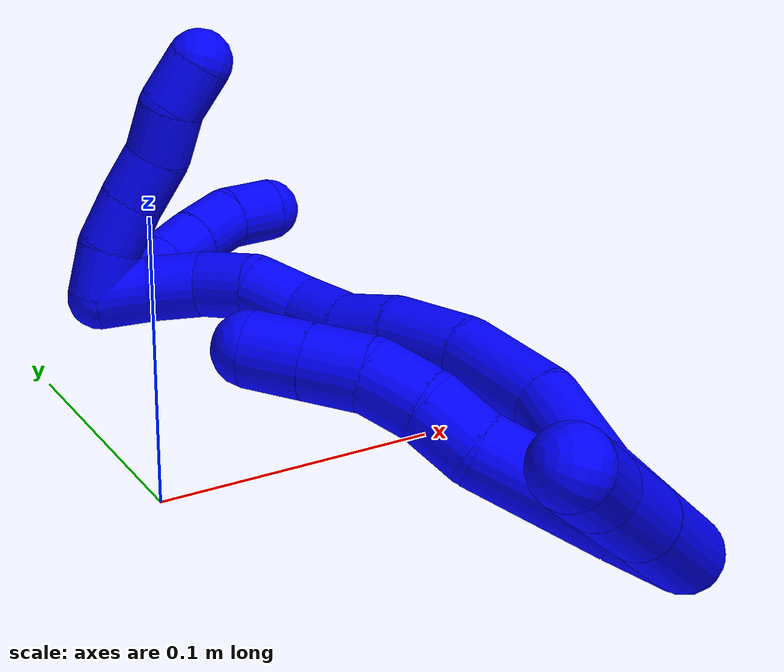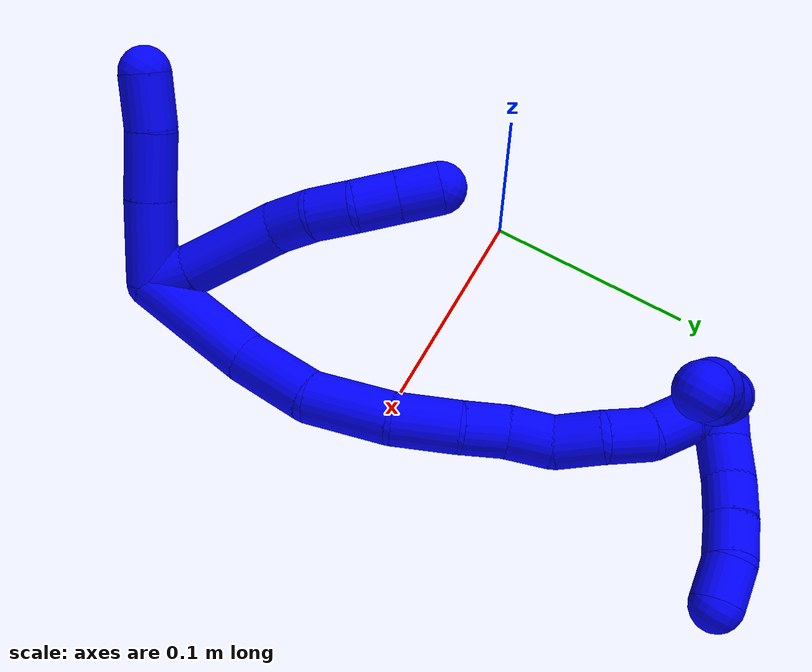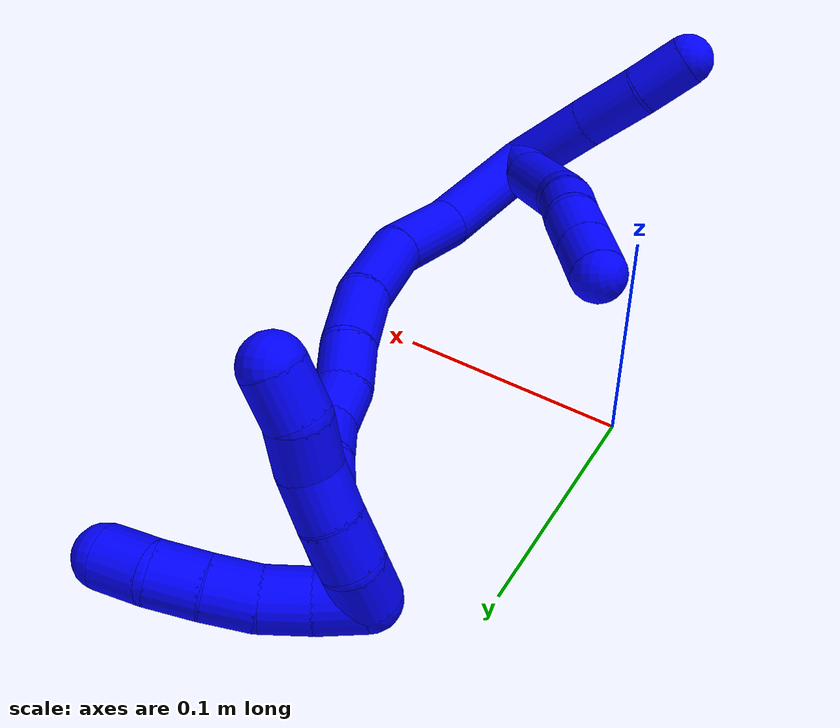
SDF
<sdf version="1.7">
 <world name="default">
  <model name="1">
   <static>0</static>
   <link name="1">
    <collision name="collision-cylinder-e_1_2_8">
     <pose>-0.000331 0.00731 -0.007769 -2.38662 -0.030997 0.078143</pose>
     <geometry><cylinder><radius>0.0125</radius><length>0.021345</length></cylinder></geometry>
     <surface>
      <friction><ode><mu>1.16</mu><mu2>1.16</mu2><slip1>0</slip1><slip2>0</slip2></ode></friction>
      <contact><ode><kp>1e+06</kp><kd>1</kd><max_vel>0</max_vel><min_depth>0.001</min_depth></ode></contact>
     </surface>
    </collision>
    <visual name="visual-cylinder-e_1_2_8">
     <pose>-0.000331 0.00731 -0.007769 -2.38662 -0.030997 0.078143</pose>
     <geometry><cylinder><radius>0.0125</radius><length>0.021345</length></cylinder></geometry>
     <material><ambient>0 0 1 1</ambient></material>
    </visual>
    <collision name="collision-cylinder-e_2_8_9">
     <pose>-0.00284 0.028673 -0.034826 -2.51193 -0.091033 0.277923</pose>
     <geometry><cylinder><radius>0.0125</radius><length>0.047927</length></cylinder></geometry>
     <surface>
      <friction><ode><mu>1.16</mu><mu2>1.16</mu2><slip1>0</slip1><slip2>0</slip2></ode></friction>
      <contact><ode><kp>1e+06</kp><kd>1</kd><max_vel>0</max_vel><min_depth>0.001</min_depth></ode></contact>
     </surface>
    </collision>
    <visual name="visual-cylinder-e_2_8_9">
     <pose>-0.00284 0.028673 -0.034826 -2.51193 -0.091033 0.277923</pose>
     <geometry><cylinder><radius>0.0125</radius><length>0.047927</length></cylinder></geometry>
     <material><ambient>0 0 1 1</ambient></material>
    </visual>
    <collision name="collision-cylinder-e_3_9_10">
     <pose>-0.007841 0.049629 -0.060778 -2.33867 -0.286126 0.654253</pose>
     <geometry><cylinder><radius>0.0125</radius><length>0.020004</length></cylinder></geometry>
     <surface>
      <friction><ode><mu>1.16</mu><mu2>1.16</mu2><slip1>0</slip1><slip2>0</slip2></ode></friction>
      <contact><ode><kp>1e+06</kp><kd>1</kd><max_vel>0</max_vel><min_depth>0.001</min_depth></ode></contact>
     </surface>
    </collision>
    <visual name="visual-cylinder-e_3_9_10">
     <pose>-0.007841 0.049629 -0.060778 -2.33867 -0.286126 0.654253</pose>
     <geometry><cylinder><radius>0.0125</radius><length>0.020004</length></cylinder></geometry>
     <material><ambient>0 0 1 1</ambient></material>
    </visual>
    <collision name="collision-cylinder-e_4_10_11">
     <pose>-0.011324 0.064355 -0.073934 -2.26333 -0.064839 0.137865</pose>
     <geometry><cylinder><radius>0.0125</radius><length>0.020374</length></cylinder></geometry>
     <surface>
      <friction><ode><mu>1.16</mu><mu2>1.16</mu2><slip1>0</slip1><slip2>0</slip2></ode></friction>
      <contact><ode><kp>1e+06</kp><kd>1</kd><max_vel>0</max_vel><min_depth>0.001</min_depth></ode></contact>
     </surface>
    </collision>
    <visual name="visual-cylinder-e_4_10_11">
     <pose>-0.011324 0.064355 -0.073934 -2.26333 -0.064839 0.137865</pose>
     <geometry><cylinder><radius>0.0125</radius><length>0.020374</length></cylinder></geometry>
     <material><ambient>0 0 1 1</ambient></material>
    </visual>
    <collision name="collision-cylinder-e_5_11_12">
     <pose>-0.009844 0.079415 -0.087186 -2.32231 0.212861 -0.482506</pose>
     <geometry><cylinder><radius>0.0125</radius><length>0.020266</length></cylinder></geometry>
     <surface>
      <friction><ode><mu>1.16</mu><mu2>1.16</mu2><slip1>0</slip1><slip2>0</slip2></ode></friction>
      <contact><ode><kp>1e+06</kp><kd>1</kd><max_vel>0</max_vel><min_depth>0.001</min_depth></ode></contact>
     </surface>
    </collision>
    <visual name="visual-cylinder-e_5_11_12">
     <pose>-0.009844 0.079415 -0.087186 -2.32231 0.212861 -0.482506</pose>
     <geometry><cylinder><radius>0.0125</radius><length>0.020266</length></cylinder></geometry>
     <material><ambient>0 0 1 1</ambient></material>
    </visual>
    <collision name="collision-cylinder-e_6_12_6">
     <pose>-0.005599 0.093845 -0.100633 -2.31955 0.21106 -0.476816</pose>
     <geometry><cylinder><radius>0.0125</radius><length>0.020085</length></cylinder></geometry>
     <surface>
      <friction><ode><mu>1.16</mu><mu2>1.16</mu2><slip1>0</slip1><slip2>0</slip2></ode></friction>
      <contact><ode><kp>1e+06</kp><kd>1</kd><max_vel>0</max_vel><min_depth>0.001</min_depth></ode></contact>
     </surface>
    </collision>
    <visual name="visual-cylinder-e_6_12_6">
     <pose>-0.005599 0.093845 -0.100633 -2.31955 0.21106 -0.476816</pose>
     <geometry><cylinder><radius>0.0125</radius><length>0.020085</length></cylinder></geometry>
     <material><ambient>0 0 1 1</ambient></material>
    </visual>
    <collision name="collision-cylinder-e_1_2_13">
     <pose>-0.005926 -0.008426 -0.017744 2.69827 -0.293018 -1.15946</pose>
     <geometry><cylinder><radius>0.0125</radius><length>0.041034</length></cylinder></geometry>
     <surface>
      <friction><ode><mu>1.16</mu><mu2>1.16</mu2><slip1>0</slip1><slip2>0</slip2></ode></friction>
      <contact><ode><kp>1e+06</kp><kd>1</kd><max_vel>0</max_vel><min_depth>0.001</min_depth></ode></contact>
     </surface>
    </collision>
    <visual name="visual-cylinder-e_1_2_13">
     <pose>-0.005926 -0.008426 -0.017744 2.69827 -0.293018 -1.15946</pose>
     <geometry><cylinder><radius>0.0125</radius><length>0.041034</length></cylinder></geometry>
     <material><ambient>0 0 1 1</ambient></material>
    </visual>
    <collision name="collision-cylinder-e_2_13_14">
     <pose>-0.016451 -0.022796 -0.049818 2.74835 -0.288169 -1.25904</pose>
     <geometry><cylinder><radius>0.0125</radius><length>0.032364</length></cylinder></geometry>
     <surface>
      <friction><ode><mu>1.16</mu><mu2>1.16</mu2><slip1>0</slip1><slip2>0</slip2></ode></friction>
      <contact><ode><kp>1e+06</kp><kd>1</kd><max_vel>0</max_vel><min_depth>0.001</min_depth></ode></contact>
     </surface>
    </collision>
    <visual name="visual-cylinder-e_2_13_14">
     <pose>-0.016451 -0.022796 -0.049818 2.74835 -0.288169 -1.25904</pose>
     <geometry><cylinder><radius>0.0125</radius><length>0.032364</length></cylinder></geometry>
     <material><ambient>0 0 1 1</ambient></material>
    </visual>
    <collision name="collision-cylinder-e_3_14_5">
     <pose>-0.024714 -0.035373 -0.075081 2.59636 -0.27903 -0.930942</pose>
     <geometry><cylinder><radius>0.0125</radius><length>0.026602</length></cylinder></geometry>
     <surface>
      <friction><ode><mu>1.16</mu><mu2>1.16</mu2><slip1>0</slip1><slip2>0</slip2></ode></friction>
      <contact><ode><kp>1e+06</kp><kd>1</kd><max_vel>0</max_vel><min_depth>0.001</min_depth></ode></contact>
     </surface>
    </collision>
    <visual name="visual-cylinder-e_3_14_5">
     <pose>-0.024714 -0.035373 -0.075081 2.59636 -0.27903 -0.930942</pose>
     <geometry><cylinder><radius>0.0125</radius><length>0.026602</length></cylinder></geometry>
     <material><ambient>0 0 1 1</ambient></material>
    </visual>
    <collision name="collision-cylinder-e_1_2_15">
     <pose>-0.001015 0.029984 0.003526 -1.45375 -0.033592 0.029875</pose>
     <geometry><cylinder><radius>0.0125</radius><length>0.060416</length></cylinder></geometry>
     <surface>
      <friction><ode><mu>1.16</mu><mu2>1.16</mu2><slip1>0</slip1><slip2>0</slip2></ode></friction>
      <contact><ode><kp>1e+06</kp><kd>1</kd><max_vel>0</max_vel><min_depth>0.001</min_depth></ode></contact>
     </surface>
    </collision>
    <visual name="visual-cylinder-e_1_2_15">
     <pose>-0.001015 0.029984 0.003526 -1.45375 -0.033592 0.029875</pose>
     <geometry><cylinder><radius>0.0125</radius><length>0.060416</length></cylinder></geometry>
     <material><ambient>0 0 1 1</ambient></material>
    </visual>
    <collision name="collision-cylinder-e_2_15_16">
     <pose>-0.007135 0.079113 0.006318 -1.60905 -0.260467 0.270507</pose>
     <geometry><cylinder><radius>0.0125</radius><length>0.039653</length></cylinder></geometry>
     <surface>
      <friction><ode><mu>1.16</mu><mu2>1.16</mu2><slip1>0</slip1><slip2>0</slip2></ode></friction>
      <contact><ode><kp>1e+06</kp><kd>1</kd><max_vel>0</max_vel><min_depth>0.001</min_depth></ode></contact>
     </surface>
    </collision>
    <visual name="visual-cylinder-e_2_15_16">
     <pose>-0.007135 0.079113 0.006318 -1.60905 -0.260467 0.270507</pose>
     <geometry><cylinder><radius>0.0125</radius><length>0.039653</length></cylinder></geometry>
     <material><ambient>0 0 1 1</ambient></material>
    </visual>
    <collision name="collision-cylinder-e_3_16_17">
     <pose>-0.013035 0.117423 -4.7e-05 -1.85662 -0.039704 0.053045</pose>
     <geometry><cylinder><radius>0.0125</radius><length>0.039986</length></cylinder></geometry>
     <surface>
      <friction><ode><mu>1.16</mu><mu2>1.16</mu2><slip1>0</slip1><slip2>0</slip2></ode></friction>
      <contact><ode><kp>1e+06</kp><kd>1</kd><max_vel>0</max_vel><min_depth>0.001</min_depth></ode></contact>
     </surface>
    </collision>
    <visual name="visual-cylinder-e_3_16_17">
     <pose>-0.013035 0.117423 -4.7e-05 -1.85662 -0.039704 0.053045</pose>
     <geometry><cylinder><radius>0.0125</radius><length>0.039986</length></cylinder></geometry>
     <material><ambient>0 0 1 1</ambient></material>
    </visual>
    <collision name="collision-cylinder-e_4_17_18">
     <pose>-0.011222 0.150696 -0.011629 -1.96993 0.168628 -0.253375</pose>
     <geometry><cylinder><radius>0.0125</radius><length>0.031061</length></cylinder></geometry>
     <surface>
      <friction><ode><mu>1.16</mu><mu2>1.16</mu2><slip1>0</slip1><slip2>0</slip2></ode></friction>
      <contact><ode><kp>1e+06</kp><kd>1</kd><max_vel>0</max_vel><min_depth>0.001</min_depth></ode></contact>
     </surface>
    </collision>
    <visual name="visual-cylinder-e_4_17_18">
     <pose>-0.011222 0.150696 -0.011629 -1.96993 0.168628 -0.253375</pose>
     <geometry><cylinder><radius>0.0125</radius><length>0.031061</length></cylinder></geometry>
     <material><ambient>0 0 1 1</ambient></material>
    </visual>
    <collision name="collision-cylinder-e_5_18_19">
     <pose>-0.004643 0.174106 -0.021777 -1.99469 0.371185 -0.565821</pose>
     <geometry><cylinder><radius>0.0125</radius><length>0.021906</length></cylinder></geometry>
     <surface>
      <friction><ode><mu>1.16</mu><mu2>1.16</mu2><slip1>0</slip1><slip2>0</slip2></ode></friction>
      <contact><ode><kp>1e+06</kp><kd>1</kd><max_vel>0</max_vel><min_depth>0.001</min_depth></ode></contact>
     </surface>
    </collision>
    <visual name="visual-cylinder-e_5_18_19">
     <pose>-0.004643 0.174106 -0.021777 -1.99469 0.371185 -0.565821</pose>
     <geometry><cylinder><radius>0.0125</radius><length>0.021906</length></cylinder></geometry>
     <material><ambient>0 0 1 1</ambient></material>
    </visual>
    <collision name="collision-cylinder-e_6_19_20">
     <pose>0.000422 0.193823 -0.029308 -1.88055 0.099503 -0.136223</pose>
     <geometry><cylinder><radius>0.0125</radius><length>0.021976</length></cylinder></geometry>
     <surface>
      <friction><ode><mu>1.16</mu><mu2>1.16</mu2><slip1>0</slip1><slip2>0</slip2></ode></friction>
      <contact><ode><kp>1e+06</kp><kd>1</kd><max_vel>0</max_vel><min_depth>0.001</min_depth></ode></contact>
     </surface>
    </collision>
    <visual name="visual-cylinder-e_6_19_20">
     <pose>0.000422 0.193823 -0.029308 -1.88055 0.099503 -0.136223</pose>
     <geometry><cylinder><radius>0.0125</radius><length>0.021976</length></cylinder></geometry>
     <material><ambient>0 0 1 1</ambient></material>
    </visual>
    <collision name="collision-cylinder-e_7_20_21">
     <pose>0.001668 0.213299 -0.039436 -2.21418 0.013654 -0.027303</pose>
     <geometry><cylinder><radius>0.0125</radius><length>0.022656</length></cylinder></geometry>
     <surface>
      <friction><ode><mu>1.16</mu><mu2>1.16</mu2><slip1>0</slip1><slip2>0</slip2></ode></friction>
      <contact><ode><kp>1e+06</kp><kd>1</kd><max_vel>0</max_vel><min_depth>0.001</min_depth></ode></contact>
     </surface>
    </collision>
    <visual name="visual-cylinder-e_7_20_21">
     <pose>0.001668 0.213299 -0.039436 -2.21418 0.013654 -0.027303</pose>
     <geometry><cylinder><radius>0.0125</radius><length>0.022656</length></cylinder></geometry>
     <material><ambient>0 0 1 1</ambient></material>
    </visual>
    <collision name="collision-cylinder-e_8_21_22">
     <pose>0.005611 0.23091 -0.051863 -2.15331 0.354415 -0.641874</pose>
     <geometry><cylinder><radius>0.0125</radius><length>0.021832</length></cylinder></geometry>
     <surface>
      <friction><ode><mu>1.16</mu><mu2>1.16</mu2><slip1>0</slip1><slip2>0</slip2></ode></friction>
      <contact><ode><kp>1e+06</kp><kd>1</kd><max_vel>0</max_vel><min_depth>0.001</min_depth></ode></contact>
     </surface>
    </collision>
    <visual name="visual-cylinder-e_8_21_22">
     <pose>0.005611 0.23091 -0.051863 -2.15331 0.354415 -0.641874</pose>
     <geometry><cylinder><radius>0.0125</radius><length>0.021832</length></cylinder></geometry>
     <material><ambient>0 0 1 1</ambient></material>
    </visual>
    <collision name="collision-cylinder-e_9_22_23">
     <pose>0.014005 0.244727 -0.064663 -2.50787 0.477756 -1.27758</pose>
     <geometry><cylinder><radius>0.0125</radius><length>0.020035</length></cylinder></geometry>
     <surface>
      <friction><ode><mu>1.16</mu><mu2>1.16</mu2><slip1>0</slip1><slip2>0</slip2></ode></friction>
      <contact><ode><kp>1e+06</kp><kd>1</kd><max_vel>0</max_vel><min_depth>0.001</min_depth></ode></contact>
     </surface>
    </collision>
    <visual name="visual-cylinder-e_9_22_23">
     <pose>0.014005 0.244727 -0.064663 -2.50787 0.477756 -1.27758</pose>
     <geometry><cylinder><radius>0.0125</radius><length>0.020035</length></cylinder></geometry>
     <material><ambient>0 0 1 1</ambient></material>
    </visual>
    <collision name="collision-cylinder-e_10_23_1">
     <pose>0.023784 0.254466 -0.079454 -2.61111 0.529618 -1.56908</pose>
     <geometry><cylinder><radius>0.0125</radius><length>0.02048</length></cylinder></geometry>
     <surface>
      <friction><ode><mu>1.16</mu><mu2>1.16</mu2><slip1>0</slip1><slip2>0</slip2></ode></friction>
      <contact><ode><kp>1e+06</kp><kd>1</kd><max_vel>0</max_vel><min_depth>0.001</min_depth></ode></contact>
     </surface>
    </collision>
    <visual name="visual-cylinder-e_10_23_1">
     <pose>0.023784 0.254466 -0.079454 -2.61111 0.529618 -1.56908</pose>
     <geometry><cylinder><radius>0.0125</radius><length>0.02048</length></cylinder></geometry>
     <material><ambient>0 0 1 1</ambient></material>
    </visual>
    <collision name="collision-cylinder-e_1_1_24">
     <pose>0.026311 0.264239 -0.079022 -0.58212 -0.267824 0.080671</pose>
     <geometry><cylinder><radius>0.0125</radius><length>0.02</length></cylinder></geometry>
     <surface>
      <friction><ode><mu>1.16</mu><mu2>1.16</mu2><slip1>0</slip1><slip2>0</slip2></ode></friction>
      <contact><ode><kp>1e+06</kp><kd>1</kd><max_vel>0</max_vel><min_depth>0.001</min_depth></ode></contact>
     </surface>
    </collision>
    <visual name="visual-cylinder-e_1_1_24">
     <pose>0.026311 0.264239 -0.079022 -0.58212 -0.267824 0.080671</pose>
     <geometry><cylinder><radius>0.0125</radius><length>0.02</length></cylinder></geometry>
     <material><ambient>0 0 1 1</ambient></material>
    </visual>
    <collision name="collision-cylinder-e_2_24_25">
     <pose>0.019352 0.275064 -0.063833 -0.658779 -0.445975 0.154722</pose>
     <geometry><cylinder><radius>0.0125</radius><length>0.02</length></cylinder></geometry>
     <surface>
      <friction><ode><mu>1.16</mu><mu2>1.16</mu2><slip1>0</slip1><slip2>0</slip2></ode></friction>
      <contact><ode><kp>1e+06</kp><kd>1</kd><max_vel>0</max_vel><min_depth>0.001</min_depth></ode></contact>
     </surface>
    </collision>
    <visual name="visual-cylinder-e_2_24_25">
     <pose>0.019352 0.275064 -0.063833 -0.658779 -0.445975 0.154722</pose>
     <geometry><cylinder><radius>0.0125</radius><length>0.02</length></cylinder></geometry>
     <material><ambient>0 0 1 1</ambient></material>
    </visual>
    <collision name="collision-cylinder-e_3_25_26">
     <pose>0.009299 0.284976 -0.049786 -0.565648 -0.611351 0.182904</pose>
     <geometry><cylinder><radius>0.0125</radius><length>0.02</length></cylinder></geometry>
     <surface>
      <friction><ode><mu>1.16</mu><mu2>1.16</mu2><slip1>0</slip1><slip2>0</slip2></ode></friction>
      <contact><ode><kp>1e+06</kp><kd>1</kd><max_vel>0</max_vel><min_depth>0.001</min_depth></ode></contact>
     </surface>
    </collision>
    <visual name="visual-cylinder-e_3_25_26">
     <pose>0.009299 0.284976 -0.049786 -0.565648 -0.611351 0.182904</pose>
     <geometry><cylinder><radius>0.0125</radius><length>0.02</length></cylinder></geometry>
     <material><ambient>0 0 1 1</ambient></material>
    </visual>
    <collision name="collision-cylinder-e_4_26_27">
     <pose>-0.001994 0.293117 -0.035451 -0.468175 -0.588689 0.144327</pose>
     <geometry><cylinder><radius>0.0125</radius><length>0.02</length></cylinder></geometry>
     <surface>
      <friction><ode><mu>1.16</mu><mu2>1.16</mu2><slip1>0</slip1><slip2>0</slip2></ode></friction>
      <contact><ode><kp>1e+06</kp><kd>1</kd><max_vel>0</max_vel><min_depth>0.001</min_depth></ode></contact>
     </surface>
    </collision>
    <visual name="visual-cylinder-e_4_26_27">
     <pose>-0.001994 0.293117 -0.035451 -0.468175 -0.588689 0.144327</pose>
     <geometry><cylinder><radius>0.0125</radius><length>0.02</length></cylinder></geometry>
     <material><ambient>0 0 1 1</ambient></material>
    </visual>
    <collision name="collision-cylinder-e_5_27_4">
     <pose>-0.011296 0.298746 -0.01895 -0.203685 -0.384295 0.039759</pose>
     <geometry><cylinder><radius>0.0125</radius><length>0.02</length></cylinder></geometry>
     <surface>
      <friction><ode><mu>1.16</mu><mu2>1.16</mu2><slip1>0</slip1><slip2>0</slip2></ode></friction>
      <contact><ode><kp>1e+06</kp><kd>1</kd><max_vel>0</max_vel><min_depth>0.001</min_depth></ode></contact>
     </surface>
    </collision>
    <visual name="visual-cylinder-e_5_27_4">
     <pose>-0.011296 0.298746 -0.01895 -0.203685 -0.384295 0.039759</pose>
     <geometry><cylinder><radius>0.0125</radius><length>0.02</length></cylinder></geometry>
     <material><ambient>0 0 1 1</ambient></material>
    </visual>
    <collision name="collision-cylinder-e_1_1_28">
     <pose>0.019086 0.259426 -0.088597 -2.83034 -1.41047 2.77707</pose>
     <geometry><cylinder><radius>0.0125</radius><length>0.02</length></cylinder></geometry>
     <surface>
      <friction><ode><mu>1.16</mu><mu2>1.16</mu2><slip1>0</slip1><slip2>0</slip2></ode></friction>
      <contact><ode><kp>1e+06</kp><kd>1</kd><max_vel>0</max_vel><min_depth>0.001</min_depth></ode></contact>
     </surface>
    </collision>
    <visual name="visual-cylinder-e_1_1_28">
     <pose>0.019086 0.259426 -0.088597 -2.83034 -1.41047 2.77707</pose>
     <geometry><cylinder><radius>0.0125</radius><length>0.02</length></cylinder></geometry>
     <material><ambient>0 0 1 1</ambient></material>
    </visual>
    <collision name="collision-cylinder-e_2_28_29">
     <pose>-0.00073 0.258993 -0.089604 1.06339 -1.46508 -0.973284</pose>
     <geometry><cylinder><radius>0.0125</radius><length>0.02</length></cylinder></geometry>
     <surface>
      <friction><ode><mu>1.16</mu><mu2>1.16</mu2><slip1>0</slip1><slip2>0</slip2></ode></friction>
      <contact><ode><kp>1e+06</kp><kd>1</kd><max_vel>0</max_vel><min_depth>0.001</min_depth></ode></contact>
     </surface>
    </collision>
    <visual name="visual-cylinder-e_2_28_29">
     <pose>-0.00073 0.258993 -0.089604 1.06339 -1.46508 -0.973284</pose>
     <geometry><cylinder><radius>0.0125</radius><length>0.02</length></cylinder></geometry>
     <material><ambient>0 0 1 1</ambient></material>
    </visual>
    <collision name="collision-cylinder-e_3_29_30">
     <pose>-0.020475 0.256284 -0.088223 1.11845 -1.37081 -0.945987</pose>
     <geometry><cylinder><radius>0.0125</radius><length>0.02</length></cylinder></geometry>
     <surface>
      <friction><ode><mu>1.16</mu><mu2>1.16</mu2><slip1>0</slip1><slip2>0</slip2></ode></friction>
      <contact><ode><kp>1e+06</kp><kd>1</kd><max_vel>0</max_vel><min_depth>0.001</min_depth></ode></contact>
     </surface>
    </collision>
    <visual name="visual-cylinder-e_3_29_30">
     <pose>-0.020475 0.256284 -0.088223 1.11845 -1.37081 -0.945987</pose>
     <geometry><cylinder><radius>0.0125</radius><length>0.02</length></cylinder></geometry>
     <material><ambient>0 0 1 1</ambient></material>
    </visual>
    <collision name="collision-cylinder-e_4_30_31">
     <pose>-0.04001 0.252893 -0.088986 2.36462 -1.33995 -2.18785</pose>
     <geometry><cylinder><radius>0.0125</radius><length>0.02</length></cylinder></geometry>
     <surface>
      <friction><ode><mu>1.16</mu><mu2>1.16</mu2><slip1>0</slip1><slip2>0</slip2></ode></friction>
      <contact><ode><kp>1e+06</kp><kd>1</kd><max_vel>0</max_vel><min_depth>0.001</min_depth></ode></contact>
     </surface>
    </collision>
    <visual name="visual-cylinder-e_4_30_31">
     <pose>-0.04001 0.252893 -0.088986 2.36462 -1.33995 -2.18785</pose>
     <geometry><cylinder><radius>0.0125</radius><length>0.02</length></cylinder></geometry>
     <material><ambient>0 0 1 1</ambient></material>
    </visual>
    <collision name="collision-cylinder-e_5_31_3">
     <pose>-0.059526 0.249816 -0.089148 0.786521 -1.36119 -0.648114</pose>
     <geometry><cylinder><radius>0.0125</radius><length>0.02</length></cylinder></geometry>
     <surface>
      <friction><ode><mu>1.16</mu><mu2>1.16</mu2><slip1>0</slip1><slip2>0</slip2></ode></friction>
      <contact><ode><kp>1e+06</kp><kd>1</kd><max_vel>0</max_vel><min_depth>0.001</min_depth></ode></contact>
     </surface>
    </collision>
    <visual name="visual-cylinder-e_5_31_3">
     <pose>-0.059526 0.249816 -0.089148 0.786521 -1.36119 -0.648114</pose>
     <geometry><cylinder><radius>0.0125</radius><length>0.02</length></cylinder></geometry>
     <material><ambient>0 0 1 1</ambient></material>
    </visual>
    <collision name="collision-sphere-3">
     <pose>-0.069307 0.248343 -0.087678 0 -0 0</pose>
     <geometry><sphere><radius>0.0125</radius></sphere></geometry>
     <surface>
      <friction><ode><mu>1.16</mu><mu2>1.16</mu2><slip1>0</slip1><slip2>0</slip2></ode></friction>
      <contact><ode><kp>1e+06</kp><kd>1</kd><max_vel>0</max_vel><min_depth>0.001</min_depth></ode></contact>
     </surface>
    </collision>
    <visual name="visual-sphere-3">
     <pose>-0.069307 0.248343 -0.087678 0 -0 0</pose>
     <geometry><sphere><radius>0.0125</radius></sphere></geometry>
     <material><ambient>0 0 1 1</ambient></material>
    </visual>
    <collision name="collision-sphere-31">
     <pose>-0.049745 0.251289 -0.090617 0 -0 0</pose>
     <geometry><sphere><radius>0.0125</radius></sphere></geometry>
     <surface>
      <friction><ode><mu>1.16</mu><mu2>1.16</mu2><slip1>0</slip1><slip2>0</slip2></ode></friction>
      <contact><ode><kp>1e+06</kp><kd>1</kd><max_vel>0</max_vel><min_depth>0.001</min_depth></ode></contact>
     </surface>
    </collision>
    <visual name="visual-sphere-31">
     <pose>-0.049745 0.251289 -0.090617 0 -0 0</pose>
     <geometry><sphere><radius>0.0125</radius></sphere></geometry>
     <material><ambient>0 0 1 1</ambient></material>
    </visual>
    <collision name="collision-sphere-30">
     <pose>-0.030275 0.254497 -0.087354 0 -0 0</pose>
     <geometry><sphere><radius>0.0125</radius></sphere></geometry>
     <surface>
      <friction><ode><mu>1.16</mu><mu2>1.16</mu2><slip1>0</slip1><slip2>0</slip2></ode></friction>
      <contact><ode><kp>1e+06</kp><kd>1</kd><max_vel>0</max_vel><min_depth>0.001</min_depth></ode></contact>
     </surface>
    </collision>
    <visual name="visual-sphere-30">
     <pose>-0.030275 0.254497 -0.087354 0 -0 0</pose>
     <geometry><sphere><radius>0.0125</radius></sphere></geometry>
     <material><ambient>0 0 1 1</ambient></material>
    </visual>
    <collision name="collision-sphere-29">
     <pose>-0.010674 0.258071 -0.089091 0 -0 0</pose>
     <geometry><sphere><radius>0.0125</radius></sphere></geometry>
     <surface>
      <friction><ode><mu>1.16</mu><mu2>1.16</mu2><slip1>0</slip1><slip2>0</slip2></ode></friction>
      <contact><ode><kp>1e+06</kp><kd>1</kd><max_vel>0</max_vel><min_depth>0.001</min_depth></ode></contact>
     </surface>
    </collision>
    <visual name="visual-sphere-29">
     <pose>-0.010674 0.258071 -0.089091 0 -0 0</pose>
     <geometry><sphere><radius>0.0125</radius></sphere></geometry>
     <material><ambient>0 0 1 1</ambient></material>
    </visual>
    <collision name="collision-sphere-28">
     <pose>0.009214 0.259915 -0.090116 0 -0 0</pose>
     <geometry><sphere><radius>0.0125</radius></sphere></geometry>
     <surface>
      <friction><ode><mu>1.16</mu><mu2>1.16</mu2><slip1>0</slip1><slip2>0</slip2></ode></friction>
      <contact><ode><kp>1e+06</kp><kd>1</kd><max_vel>0</max_vel><min_depth>0.001</min_depth></ode></contact>
     </surface>
    </collision>
    <visual name="visual-sphere-28">
     <pose>0.009214 0.259915 -0.090116 0 -0 0</pose>
     <geometry><sphere><radius>0.0125</radius></sphere></geometry>
     <material><ambient>0 0 1 1</ambient></material>
    </visual>
    <collision name="collision-sphere-4">
     <pose>-0.015045 0.300621 -0.009871 0 -0 0</pose>
     <geometry><sphere><radius>0.0125</radius></sphere></geometry>
     <surface>
      <friction><ode><mu>1.16</mu><mu2>1.16</mu2><slip1>0</slip1><slip2>0</slip2></ode></friction>
      <contact><ode><kp>1e+06</kp><kd>1</kd><max_vel>0</max_vel><min_depth>0.001</min_depth></ode></contact>
     </surface>
    </collision>
    <visual name="visual-sphere-4">
     <pose>-0.015045 0.300621 -0.009871 0 -0 0</pose>
     <geometry><sphere><radius>0.0125</radius></sphere></geometry>
     <material><ambient>0 0 1 1</ambient></material>
    </visual>
    <collision name="collision-sphere-27">
     <pose>-0.007547 0.29687 -0.028029 0 -0 0</pose>
     <geometry><sphere><radius>0.0125</radius></sphere></geometry>
     <surface>
      <friction><ode><mu>1.16</mu><mu2>1.16</mu2><slip1>0</slip1><slip2>0</slip2></ode></friction>
      <contact><ode><kp>1e+06</kp><kd>1</kd><max_vel>0</max_vel><min_depth>0.001</min_depth></ode></contact>
     </surface>
    </collision>
    <visual name="visual-sphere-27">
     <pose>-0.007547 0.29687 -0.028029 0 -0 0</pose>
     <geometry><sphere><radius>0.0125</radius></sphere></geometry>
     <material><ambient>0 0 1 1</ambient></material>
    </visual>
    <collision name="collision-sphere-26">
     <pose>0.003559 0.289365 -0.042872 0 -0 0</pose>
     <geometry><sphere><radius>0.0125</radius></sphere></geometry>
     <surface>
      <friction><ode><mu>1.16</mu><mu2>1.16</mu2><slip1>0</slip1><slip2>0</slip2></ode></friction>
      <contact><ode><kp>1e+06</kp><kd>1</kd><max_vel>0</max_vel><min_depth>0.001</min_depth></ode></contact>
     </surface>
    </collision>
    <visual name="visual-sphere-26">
     <pose>0.003559 0.289365 -0.042872 0 -0 0</pose>
     <geometry><sphere><radius>0.0125</radius></sphere></geometry>
     <material><ambient>0 0 1 1</ambient></material>
    </visual>
    <collision name="collision-sphere-25">
     <pose>0.015038 0.280587 -0.056699 0 -0 0</pose>
     <geometry><sphere><radius>0.0125</radius></sphere></geometry>
     <surface>
      <friction><ode><mu>1.16</mu><mu2>1.16</mu2><slip1>0</slip1><slip2>0</slip2></ode></friction>
      <contact><ode><kp>1e+06</kp><kd>1</kd><max_vel>0</max_vel><min_depth>0.001</min_depth></ode></contact>
     </surface>
    </collision>
    <visual name="visual-sphere-25">
     <pose>0.015038 0.280587 -0.056699 0 -0 0</pose>
     <geometry><sphere><radius>0.0125</radius></sphere></geometry>
     <material><ambient>0 0 1 1</ambient></material>
    </visual>
    <collision name="collision-sphere-24">
     <pose>0.023665 0.269541 -0.070967 0 -0 0</pose>
     <geometry><sphere><radius>0.0125</radius></sphere></geometry>
     <surface>
      <friction><ode><mu>1.16</mu><mu2>1.16</mu2><slip1>0</slip1><slip2>0</slip2></ode></friction>
      <contact><ode><kp>1e+06</kp><kd>1</kd><max_vel>0</max_vel><min_depth>0.001</min_depth></ode></contact>
     </surface>
    </collision>
    <visual name="visual-sphere-24">
     <pose>0.023665 0.269541 -0.070967 0 -0 0</pose>
     <geometry><sphere><radius>0.0125</radius></sphere></geometry>
     <material><ambient>0 0 1 1</ambient></material>
    </visual>
    <collision name="collision-sphere-1">
     <pose>0.028958 0.258937 -0.087077 0 -0 0</pose>
     <geometry><sphere><radius>0.0125</radius></sphere></geometry>
     <surface>
      <friction><ode><mu>1.16</mu><mu2>1.16</mu2><slip1>0</slip1><slip2>0</slip2></ode></friction>
      <contact><ode><kp>1e+06</kp><kd>1</kd><max_vel>0</max_vel><min_depth>0.001</min_depth></ode></contact>
     </surface>
    </collision>
    <visual name="visual-sphere-1">
     <pose>0.028958 0.258937 -0.087077 0 -0 0</pose>
     <geometry><sphere><radius>0.0125</radius></sphere></geometry>
     <material><ambient>0 0 1 1</ambient></material>
    </visual>
    <collision name="collision-sphere-23">
     <pose>0.018611 0.249995 -0.071832 0 -0 0</pose>
     <geometry><sphere><radius>0.0125</radius></sphere></geometry>
     <surface>
      <friction><ode><mu>1.16</mu><mu2>1.16</mu2><slip1>0</slip1><slip2>0</slip2></ode></friction>
      <contact><ode><kp>1e+06</kp><kd>1</kd><max_vel>0</max_vel><min_depth>0.001</min_depth></ode></contact>
     </surface>
    </collision>
    <visual name="visual-sphere-23">
     <pose>0.018611 0.249995 -0.071832 0 -0 0</pose>
     <geometry><sphere><radius>0.0125</radius></sphere></geometry>
     <material><ambient>0 0 1 1</ambient></material>
    </visual>
    <collision name="collision-sphere-22">
     <pose>0.009399 0.23946 -0.057495 0 -0 0</pose>
     <geometry><sphere><radius>0.0125</radius></sphere></geometry>
     <surface>
      <friction><ode><mu>1.16</mu><mu2>1.16</mu2><slip1>0</slip1><slip2>0</slip2></ode></friction>
      <contact><ode><kp>1e+06</kp><kd>1</kd><max_vel>0</max_vel><min_depth>0.001</min_depth></ode></contact>
     </surface>
    </collision>
    <visual name="visual-sphere-22">
     <pose>0.009399 0.23946 -0.057495 0 -0 0</pose>
     <geometry><sphere><radius>0.0125</radius></sphere></geometry>
     <material><ambient>0 0 1 1</ambient></material>
    </visual>
    <collision name="collision-sphere-21">
     <pose>0.001823 0.222361 -0.046231 0 -0 0</pose>
     <geometry><sphere><radius>0.0125</radius></sphere></geometry>
     <surface>
      <friction><ode><mu>1.16</mu><mu2>1.16</mu2><slip1>0</slip1><slip2>0</slip2></ode></friction>
      <contact><ode><kp>1e+06</kp><kd>1</kd><max_vel>0</max_vel><min_depth>0.001</min_depth></ode></contact>
     </surface>
    </collision>
    <visual name="visual-sphere-21">
     <pose>0.001823 0.222361 -0.046231 0 -0 0</pose>
     <geometry><sphere><radius>0.0125</radius></sphere></geometry>
     <material><ambient>0 0 1 1</ambient></material>
    </visual>
    <collision name="collision-sphere-12">
     <pose>-0.007703 0.086652 -0.093948 0 -0 0</pose>
     <geometry><sphere><radius>0.0125</radius></sphere></geometry>
     <surface>
      <friction><ode><mu>1.16</mu><mu2>1.16</mu2><slip1>0</slip1><slip2>0</slip2></ode></friction>
      <contact><ode><kp>1e+06</kp><kd>1</kd><max_vel>0</max_vel><min_depth>0.001</min_depth></ode></contact>
     </surface>
    </collision>
    <visual name="visual-sphere-12">
     <pose>-0.007703 0.086652 -0.093948 0 -0 0</pose>
     <geometry><sphere><radius>0.0125</radius></sphere></geometry>
     <material><ambient>0 0 1 1</ambient></material>
    </visual>
    <collision name="collision-sphere-11">
     <pose>-0.011984 0.072179 -0.080424 0 -0 0</pose>
     <geometry><sphere><radius>0.0125</radius></sphere></geometry>
     <surface>
      <friction><ode><mu>1.16</mu><mu2>1.16</mu2><slip1>0</slip1><slip2>0</slip2></ode></friction>
      <contact><ode><kp>1e+06</kp><kd>1</kd><max_vel>0</max_vel><min_depth>0.001</min_depth></ode></contact>
     </surface>
    </collision>
    <visual name="visual-sphere-11">
     <pose>-0.011984 0.072179 -0.080424 0 -0 0</pose>
     <geometry><sphere><radius>0.0125</radius></sphere></geometry>
     <material><ambient>0 0 1 1</ambient></material>
    </visual>
    <collision name="collision-sphere-10">
     <pose>-0.010664 0.056532 -0.067444 0 -0 0</pose>
     <geometry><sphere><radius>0.0125</radius></sphere></geometry>
     <surface>
      <friction><ode><mu>1.16</mu><mu2>1.16</mu2><slip1>0</slip1><slip2>0</slip2></ode></friction>
      <contact><ode><kp>1e+06</kp><kd>1</kd><max_vel>0</max_vel><min_depth>0.001</min_depth></ode></contact>
     </surface>
    </collision>
    <visual name="visual-sphere-10">
     <pose>-0.010664 0.056532 -0.067444 0 -0 0</pose>
     <geometry><sphere><radius>0.0125</radius></sphere></geometry>
     <material><ambient>0 0 1 1</ambient></material>
    </visual>
    <collision name="collision-sphere-9">
     <pose>-0.005018 0.042726 -0.054113 0 -0 0</pose>
     <geometry><sphere><radius>0.0125</radius></sphere></geometry>
     <surface>
      <friction><ode><mu>1.16</mu><mu2>1.16</mu2><slip1>0</slip1><slip2>0</slip2></ode></friction>
      <contact><ode><kp>1e+06</kp><kd>1</kd><max_vel>0</max_vel><min_depth>0.001</min_depth></ode></contact>
     </surface>
    </collision>
    <visual name="visual-sphere-9">
     <pose>-0.005018 0.042726 -0.054113 0 -0 0</pose>
     <geometry><sphere><radius>0.0125</radius></sphere></geometry>
     <material><ambient>0 0 1 1</ambient></material>
    </visual>
    <collision name="collision-sphere-2">
     <geometry><sphere><radius>0.0125</radius></sphere></geometry>
     <surface>
      <friction><ode><mu>1.16</mu><mu2>1.16</mu2><slip1>0</slip1><slip2>0</slip2></ode></friction>
      <contact><ode><kp>1e+06</kp><kd>1</kd><max_vel>0</max_vel><min_depth>0.001</min_depth></ode></contact>
     </surface>
    </collision>
    <visual name="visual-sphere-2">
     <geometry><sphere><radius>0.0125</radius></sphere></geometry>
     <material><ambient>0 0 1 1</ambient></material>
    </visual>
    <collision name="collision-sphere-19">
     <pose>-0.00067 0.18341 -0.025975 0 -0 0</pose>
     <geometry><sphere><radius>0.0125</radius></sphere></geometry>
     <surface>
      <friction><ode><mu>1.16</mu><mu2>1.16</mu2><slip1>0</slip1><slip2>0</slip2></ode></friction>
      <contact><ode><kp>1e+06</kp><kd>1</kd><max_vel>0</max_vel><min_depth>0.001</min_depth></ode></contact>
     </surface>
    </collision>
    <visual name="visual-sphere-19">
     <pose>-0.00067 0.18341 -0.025975 0 -0 0</pose>
     <geometry><sphere><radius>0.0125</radius></sphere></geometry>
     <material><ambient>0 0 1 1</ambient></material>
    </visual>
    <collision name="collision-sphere-8">
     <pose>-0.000662 0.01462 -0.015538 0 -0 0</pose>
     <geometry><sphere><radius>0.0125</radius></sphere></geometry>
     <surface>
      <friction><ode><mu>1.16</mu><mu2>1.16</mu2><slip1>0</slip1><slip2>0</slip2></ode></friction>
      <contact><ode><kp>1e+06</kp><kd>1</kd><max_vel>0</max_vel><min_depth>0.001</min_depth></ode></contact>
     </surface>
    </collision>
    <visual name="visual-sphere-8">
     <pose>-0.000662 0.01462 -0.015538 0 -0 0</pose>
     <geometry><sphere><radius>0.0125</radius></sphere></geometry>
     <material><ambient>0 0 1 1</ambient></material>
    </visual>
    <collision name="collision-sphere-6">
     <pose>-0.003496 0.101038 -0.107317 0 -0 0</pose>
     <geometry><sphere><radius>0.0125</radius></sphere></geometry>
     <surface>
      <friction><ode><mu>1.16</mu><mu2>1.16</mu2><slip1>0</slip1><slip2>0</slip2></ode></friction>
      <contact><ode><kp>1e+06</kp><kd>1</kd><max_vel>0</max_vel><min_depth>0.001</min_depth></ode></contact>
     </surface>
    </collision>
    <visual name="visual-sphere-6">
     <pose>-0.003496 0.101038 -0.107317 0 -0 0</pose>
     <geometry><sphere><radius>0.0125</radius></sphere></geometry>
     <material><ambient>0 0 1 1</ambient></material>
    </visual>
    <collision name="collision-sphere-13">
     <pose>-0.011852 -0.016851 -0.035487 0 -0 0</pose>
     <geometry><sphere><radius>0.0125</radius></sphere></geometry>
     <surface>
      <friction><ode><mu>1.16</mu><mu2>1.16</mu2><slip1>0</slip1><slip2>0</slip2></ode></friction>
      <contact><ode><kp>1e+06</kp><kd>1</kd><max_vel>0</max_vel><min_depth>0.001</min_depth></ode></contact>
     </surface>
    </collision>
    <visual name="visual-sphere-13">
     <pose>-0.011852 -0.016851 -0.035487 0 -0 0</pose>
     <geometry><sphere><radius>0.0125</radius></sphere></geometry>
     <material><ambient>0 0 1 1</ambient></material>
    </visual>
    <collision name="collision-sphere-14">
     <pose>-0.02105 -0.028741 -0.064149 0 -0 0</pose>
     <geometry><sphere><radius>0.0125</radius></sphere></geometry>
     <surface>
      <friction><ode><mu>1.16</mu><mu2>1.16</mu2><slip1>0</slip1><slip2>0</slip2></ode></friction>
      <contact><ode><kp>1e+06</kp><kd>1</kd><max_vel>0</max_vel><min_depth>0.001</min_depth></ode></contact>
     </surface>
    </collision>
    <visual name="visual-sphere-14">
     <pose>-0.02105 -0.028741 -0.064149 0 -0 0</pose>
     <geometry><sphere><radius>0.0125</radius></sphere></geometry>
     <material><ambient>0 0 1 1</ambient></material>
    </visual>
    <collision name="collision-sphere-5">
     <pose>-0.028377 -0.042004 -0.086014 0 -0 0</pose>
     <geometry><sphere><radius>0.0125</radius></sphere></geometry>
     <surface>
      <friction><ode><mu>1.16</mu><mu2>1.16</mu2><slip1>0</slip1><slip2>0</slip2></ode></friction>
      <contact><ode><kp>1e+06</kp><kd>1</kd><max_vel>0</max_vel><min_depth>0.001</min_depth></ode></contact>
     </surface>
    </collision>
    <visual name="visual-sphere-5">
     <pose>-0.028377 -0.042004 -0.086014 0 -0 0</pose>
     <geometry><sphere><radius>0.0125</radius></sphere></geometry>
     <material><ambient>0 0 1 1</ambient></material>
    </visual>
    <collision name="collision-sphere-15">
     <pose>-0.002029 0.059969 0.007051 0 -0 0</pose>
     <geometry><sphere><radius>0.0125</radius></sphere></geometry>
     <surface>
      <friction><ode><mu>1.16</mu><mu2>1.16</mu2><slip1>0</slip1><slip2>0</slip2></ode></friction>
      <contact><ode><kp>1e+06</kp><kd>1</kd><max_vel>0</max_vel><min_depth>0.001</min_depth></ode></contact>
     </surface>
    </collision>
    <visual name="visual-sphere-15">
     <pose>-0.002029 0.059969 0.007051 0 -0 0</pose>
     <geometry><sphere><radius>0.0125</radius></sphere></geometry>
     <material><ambient>0 0 1 1</ambient></material>
    </visual>
    <collision name="collision-sphere-16">
     <pose>-0.012241 0.098256 0.005586 0 -0 0</pose>
     <geometry><sphere><radius>0.0125</radius></sphere></geometry>
     <surface>
      <friction><ode><mu>1.16</mu><mu2>1.16</mu2><slip1>0</slip1><slip2>0</slip2></ode></friction>
      <contact><ode><kp>1e+06</kp><kd>1</kd><max_vel>0</max_vel><min_depth>0.001</min_depth></ode></contact>
     </surface>
    </collision>
    <visual name="visual-sphere-16">
     <pose>-0.012241 0.098256 0.005586 0 -0 0</pose>
     <geometry><sphere><radius>0.0125</radius></sphere></geometry>
     <material><ambient>0 0 1 1</ambient></material>
    </visual>
    <collision name="collision-sphere-17">
     <pose>-0.013828 0.136589 -0.005679 0 -0 0</pose>
     <geometry><sphere><radius>0.0125</radius></sphere></geometry>
     <surface>
      <friction><ode><mu>1.16</mu><mu2>1.16</mu2><slip1>0</slip1><slip2>0</slip2></ode></friction>
      <contact><ode><kp>1e+06</kp><kd>1</kd><max_vel>0</max_vel><min_depth>0.001</min_depth></ode></contact>
     </surface>
    </collision>
    <visual name="visual-sphere-17">
     <pose>-0.013828 0.136589 -0.005679 0 -0 0</pose>
     <geometry><sphere><radius>0.0125</radius></sphere></geometry>
     <material><ambient>0 0 1 1</ambient></material>
    </visual>
    <collision name="collision-sphere-18">
     <pose>-0.008615 0.164803 -0.017579 0 -0 0</pose>
     <geometry><sphere><radius>0.0125</radius></sphere></geometry>
     <surface>
      <friction><ode><mu>1.16</mu><mu2>1.16</mu2><slip1>0</slip1><slip2>0</slip2></ode></friction>
      <contact><ode><kp>1e+06</kp><kd>1</kd><max_vel>0</max_vel><min_depth>0.001</min_depth></ode></contact>
     </surface>
    </collision>
    <visual name="visual-sphere-18">
     <pose>-0.008615 0.164803 -0.017579 0 -0 0</pose>
     <geometry><sphere><radius>0.0125</radius></sphere></geometry>
     <material><ambient>0 0 1 1</ambient></material>
    </visual>
    <collision name="collision-sphere-20">
     <pose>0.001513 0.204236 -0.032641 0 -0 0</pose>
     <geometry><sphere><radius>0.0125</radius></sphere></geometry>
     <surface>
      <friction><ode><mu>1.16</mu><mu2>1.16</mu2><slip1>0</slip1><slip2>0</slip2></ode></friction>
      <contact><ode><kp>1e+06</kp><kd>1</kd><max_vel>0</max_vel><min_depth>0.001</min_depth></ode></contact>
     </surface>
    </collision>
    <visual name="visual-sphere-20">
     <pose>0.001513 0.204236 -0.032641 0 -0 0</pose>
     <geometry><sphere><radius>0.0125</radius></sphere></geometry>
     <material><ambient>0 0 1 1</ambient></material>
    </visual>
    <inertial>
     <pose>-0.005138 0.135415 -0.043312 0 -0 0</pose>
     <mass>0.75</mass>
     <inertia><ixx>5e-05</ixx><ixy>0</ixy><ixz>0</ixz><iyy>1e-05</iyy><iyz>0</iyz><izz>-5.4e-05</izz></inertia>
    </inertial>
   </link>
   <pose>0.114126 -0.129155 0.015271 -3.04019 1.13496 -3.09428</pose>
  </model>
 </world>
</sdf>
